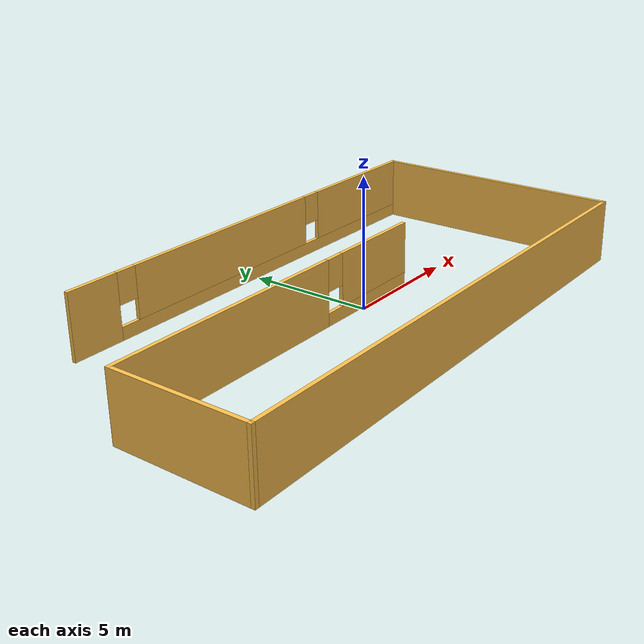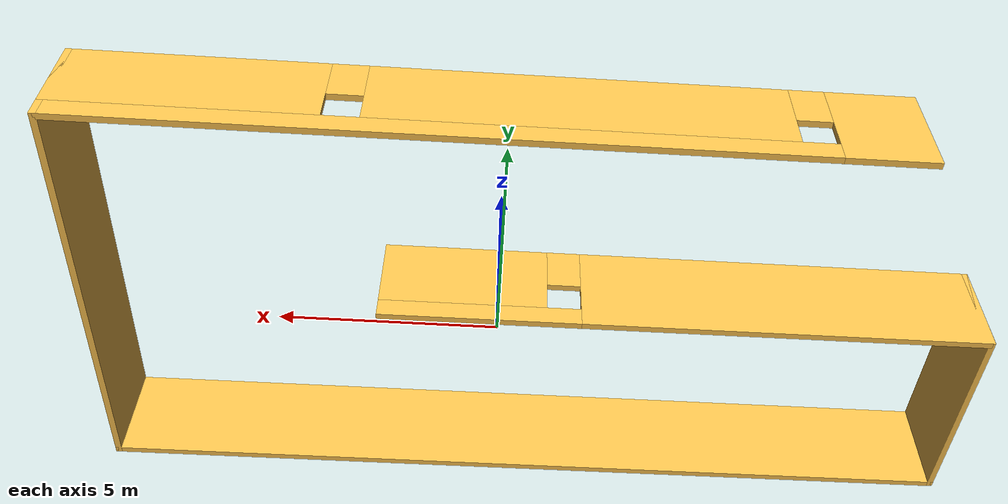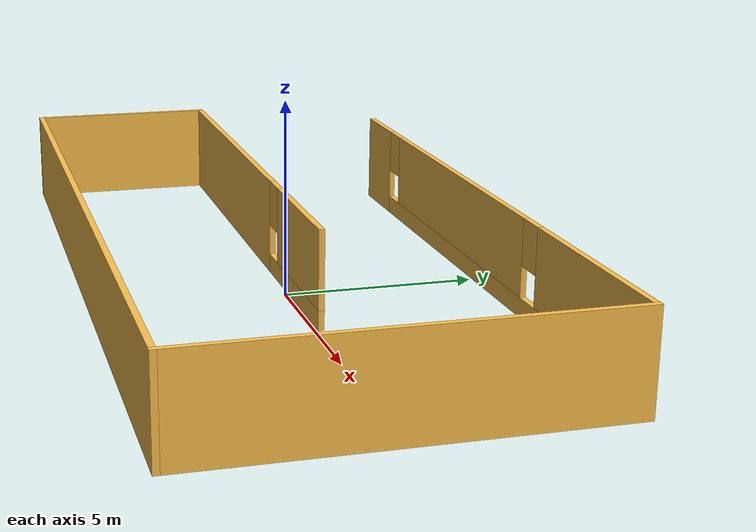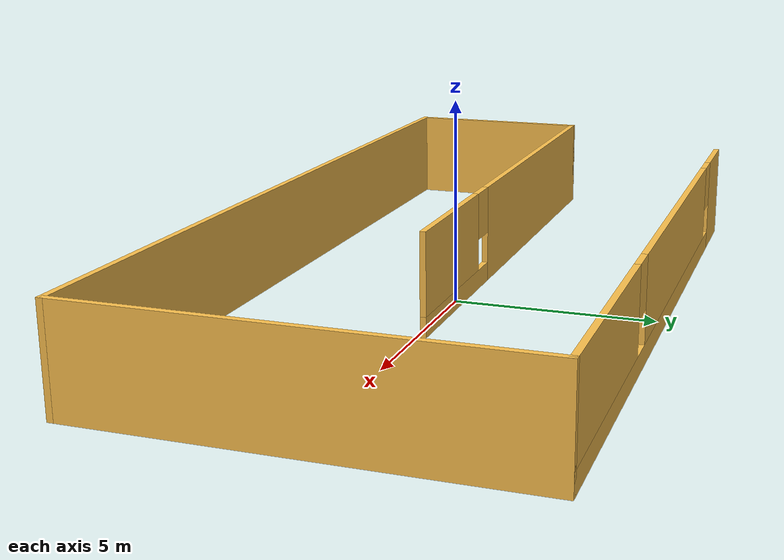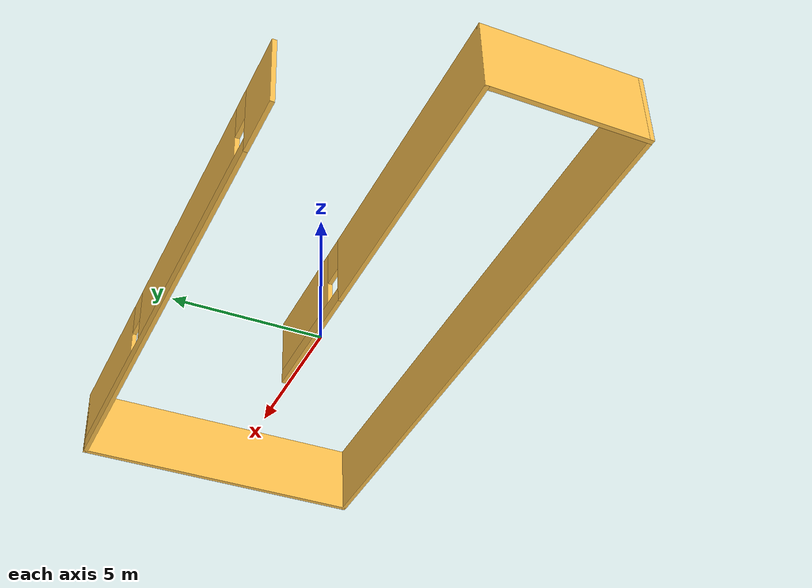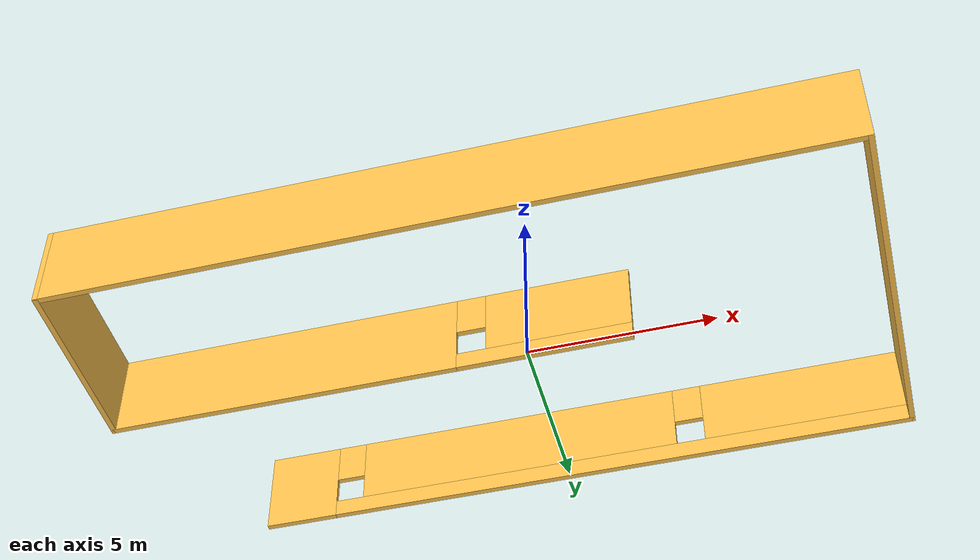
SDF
<?xml version='1.0'?>
<sdf version='1.6'>
  <model name='mybuilding2'>
    <pose frame=''>-1.0824 0.10701 0 0 -0 0</pose>
    <link name='Wall_10'>
      <pose frame=''>-3.375 0.05 0 0 -0 0</pose>
      <visual name='Wall_10_Visual_0'>
        <pose frame=''>-2.373 0 1.25 0 -0 0</pose>
        <geometry>
          <box>
            <size>9.754 0.15 2.5</size>
          </box>
        </geometry>
        <material>
          <script>
            <uri>file://media/materials/scripts/gazebo.material</uri>
            <name>Gazebo/Grey</name>
          </script>
          <ambient>1 0.764706 0.305882 1</ambient>
        </material>
        <meta>
          <layer>0</layer>
        </meta>
      </visual>
      <collision name='Wall_10_Collision_0'>
        <geometry>
          <box>
            <size>9.754 0.15 2.5</size>
          </box>
        </geometry>
        <pose frame=''>-2.373 0 1.25 0 -0 0</pose>
      </collision>
      <visual name='Wall_10_Visual_1'>
        <pose frame=''>4.877 0 0.25 0 -0 0</pose>
        <geometry>
          <box>
            <size>4.746 0.15 0.5</size>
          </box>
        </geometry>
        <material>
          <script>
            <uri>file://media/materials/scripts/gazebo.material</uri>
            <name>Gazebo/Grey</name>
          </script>
          <ambient>1 0.764706 0.305882 1</ambient>
        </material>
        <meta>
          <layer>0</layer>
        </meta>
      </visual>
      <collision name='Wall_10_Collision_1'>
        <geometry>
          <box>
            <size>4.746 0.15 0.5</size>
          </box>
        </geometry>
        <pose frame=''>4.877 0 0.25 0 -0 0</pose>
      </collision>
      <visual name='Wall_10_Visual_2'>
        <pose frame=''>5.277 0 1.5 0 -0 0</pose>
        <geometry>
          <box>
            <size>3.946 0.15 2</size>
          </box>
        </geometry>
        <material>
          <script>
            <uri>file://media/materials/scripts/gazebo.material</uri>
            <name>Gazebo/Grey</name>
          </script>
          <ambient>1 0.764706 0.305882 1</ambient>
        </material>
        <meta>
          <layer>0</layer>
        </meta>
      </visual>
      <collision name='Wall_10_Collision_2'>
        <geometry>
          <box>
            <size>3.946 0.15 2</size>
          </box>
        </geometry>
        <pose frame=''>5.277 0 1.5 0 -0 0</pose>
      </collision>
      <visual name='Wall_10_Visual_3'>
        <pose frame=''>2.904 0 1.9 0 -0 0</pose>
        <geometry>
          <box>
            <size>0.8 0.15 1.2</size>
          </box>
        </geometry>
        <material>
          <script>
            <uri>file://media/materials/scripts/gazebo.material</uri>
            <name>Gazebo/Grey</name>
          </script>
          <ambient>1 0.764706 0.305882 1</ambient>
        </material>
        <meta>
          <layer>0</layer>
        </meta>
      </visual>
      <collision name='Wall_10_Collision_3'>
        <geometry>
          <box>
            <size>0.8 0.15 1.2</size>
          </box>
        </geometry>
        <pose frame=''>2.904 0 1.9 0 -0 0</pose>
      </collision>
    </link>
    <link name='Wall_6'>
      <pose frame=''>1.375 5.05 0 0 -0 0</pose>
      <visual name='Wall_6_Visual_0'>
        <pose frame=''>-8.22182 0 1.25 0 -0 0</pose>
        <geometry>
          <box>
            <size>2.05636 0.15 2.5</size>
          </box>
        </geometry>
        <material>
          <script>
            <uri>file://media/materials/scripts/gazebo.material</uri>
            <name>Gazebo/Grey</name>
          </script>
          <ambient>1 0.764706 0.305882 1</ambient>
        </material>
        <meta>
          <layer>0</layer>
        </meta>
      </visual>
      <collision name='Wall_6_Collision_0'>
        <geometry>
          <box>
            <size>2.05636 0.15 2.5</size>
          </box>
        </geometry>
        <pose frame=''>-8.22182 0 1.25 0 -0 0</pose>
      </collision>
      <visual name='Wall_6_Visual_1'>
        <pose frame=''>1.02818 0 0.25 0 -0 0</pose>
        <geometry>
          <box>
            <size>16.4436 0.15 0.5</size>
          </box>
        </geometry>
        <material>
          <script>
            <uri>file://media/materials/scripts/gazebo.material</uri>
            <name>Gazebo/Grey</name>
          </script>
          <ambient>1 0.764706 0.305882 1</ambient>
        </material>
        <meta>
          <layer>0</layer>
        </meta>
      </visual>
      <collision name='Wall_6_Collision_1'>
        <geometry>
          <box>
            <size>16.4436 0.15 0.5</size>
          </box>
        </geometry>
        <pose frame=''>1.02818 0 0.25 0 -0 0</pose>
      </collision>
      <visual name='Wall_6_Visual_2'>
        <pose frame=''>-1.8194 0 1.5 0 -0 0</pose>
        <geometry>
          <box>
            <size>9.14847 0.15 2</size>
          </box>
        </geometry>
        <material>
          <script>
            <uri>file://media/materials/scripts/gazebo.material</uri>
            <name>Gazebo/Grey</name>
          </script>
          <ambient>1 0.764706 0.305882 1</ambient>
        </material>
        <meta>
          <layer>0</layer>
        </meta>
      </visual>
      <collision name='Wall_6_Collision_2'>
        <geometry>
          <box>
            <size>9.14847 0.15 2</size>
          </box>
        </geometry>
        <pose frame=''>-1.8194 0 1.5 0 -0 0</pose>
      </collision>
      <visual name='Wall_6_Visual_3'>
        <pose frame=''>6.40242 0 1.5 0 -0 0</pose>
        <geometry>
          <box>
            <size>5.69517 0.15 2</size>
          </box>
        </geometry>
        <material>
          <script>
            <uri>file://media/materials/scripts/gazebo.material</uri>
            <name>Gazebo/Grey</name>
          </script>
          <ambient>1 0.764706 0.305882 1</ambient>
        </material>
        <meta>
          <layer>0</layer>
        </meta>
      </visual>
      <collision name='Wall_6_Collision_3'>
        <geometry>
          <box>
            <size>5.69517 0.15 2</size>
          </box>
        </geometry>
        <pose frame=''>6.40242 0 1.5 0 -0 0</pose>
      </collision>
      <visual name='Wall_6_Visual_4'>
        <pose frame=''>-6.79364 0 1.9 0 -0 0</pose>
        <geometry>
          <box>
            <size>0.8 0.15 1.2</size>
          </box>
        </geometry>
        <material>
          <script>
            <uri>file://media/materials/scripts/gazebo.material</uri>
            <name>Gazebo/Grey</name>
          </script>
          <ambient>1 0.764706 0.305882 1</ambient>
        </material>
        <meta>
          <layer>0</layer>
        </meta>
      </visual>
      <collision name='Wall_6_Collision_4'>
        <geometry>
          <box>
            <size>0.8 0.15 1.2</size>
          </box>
        </geometry>
        <pose frame=''>-6.79364 0 1.9 0 -0 0</pose>
      </collision>
      <visual name='Wall_6_Visual_5'>
        <pose frame=''>3.15483 0 1.9 0 -0 0</pose>
        <geometry>
          <box>
            <size>0.8 0.15 1.2</size>
          </box>
        </geometry>
        <material>
          <script>
            <uri>file://media/materials/scripts/gazebo.material</uri>
            <name>Gazebo/Grey</name>
          </script>
          <ambient>1 0.764706 0.305882 1</ambient>
        </material>
        <meta>
          <layer>0</layer>
        </meta>
      </visual>
      <collision name='Wall_6_Collision_5'>
        <geometry>
          <box>
            <size>0.8 0.15 1.2</size>
          </box>
        </geometry>
        <pose frame=''>3.15483 0 1.9 0 -0 0</pose>
      </collision>
    </link>
    <link name='Wall_7'>
      <collision name='Wall_7_Collision'>
        <geometry>
          <box>
            <size>10.25 0.15 2.5</size>
          </box>
        </geometry>
        <pose frame=''>0 0 1.25 0 -0 0</pose>
      </collision>
      <visual name='Wall_7_Visual'>
        <pose frame=''>0 0 1.25 0 -0 0</pose>
        <geometry>
          <box>
            <size>10.25 0.15 2.5</size>
          </box>
        </geometry>
        <material>
          <script>
            <uri>file://media/materials/scripts/gazebo.material</uri>
            <name>Gazebo/Grey</name>
          </script>
          <ambient>1 0.764706 0.305882 1</ambient>
        </material>
        <meta>
          <layer>0</layer>
        </meta>
      </visual>
      <pose frame=''>10.55 0 0 0 0 -1.5708</pose>
    </link>
    <link name='Wall_8'>
      <collision name='Wall_8_Collision'>
        <geometry>
          <box>
            <size>21.25 0.15 2.5</size>
          </box>
        </geometry>
        <pose frame=''>0 0 1.25 0 -0 0</pose>
      </collision>
      <visual name='Wall_8_Visual'>
        <pose frame=''>0 0 1.25 0 -0 0</pose>
        <geometry>
          <box>
            <size>21.25 0.15 2.5</size>
          </box>
        </geometry>
        <material>
          <script>
            <uri>file://media/materials/scripts/gazebo.material</uri>
            <name>Gazebo/Grey</name>
          </script>
          <ambient>1 0.764706 0.305882 1</ambient>
        </material>
        <meta>
          <layer>0</layer>
        </meta>
      </visual>
      <pose frame=''>0 -5.05 0 0 -0 3.14159</pose>
    </link>
    <link name='Wall_9'>
      <collision name='Wall_9_Collision'>
        <geometry>
          <box>
            <size>5.25 0.15 2.5</size>
          </box>
        </geometry>
        <pose frame=''>0 0 1.25 0 -0 0</pose>
      </collision>
      <visual name='Wall_9_Visual'>
        <pose frame=''>0 0 1.25 0 -0 0</pose>
        <geometry>
          <box>
            <size>5.25 0.15 2.5</size>
          </box>
        </geometry>
        <material>
          <script>
            <uri>file://media/materials/scripts/gazebo.material</uri>
            <name>Gazebo/Grey</name>
          </script>
          <ambient>1 0.764706 0.305882 1</ambient>
        </material>
        <meta>
          <layer>0</layer>
        </meta>
      </visual>
      <pose frame=''>-10.55 -2.5 0 0 -0 1.5708</pose>
    </link>
    <static>1</static>
  </model>
</sdf>
